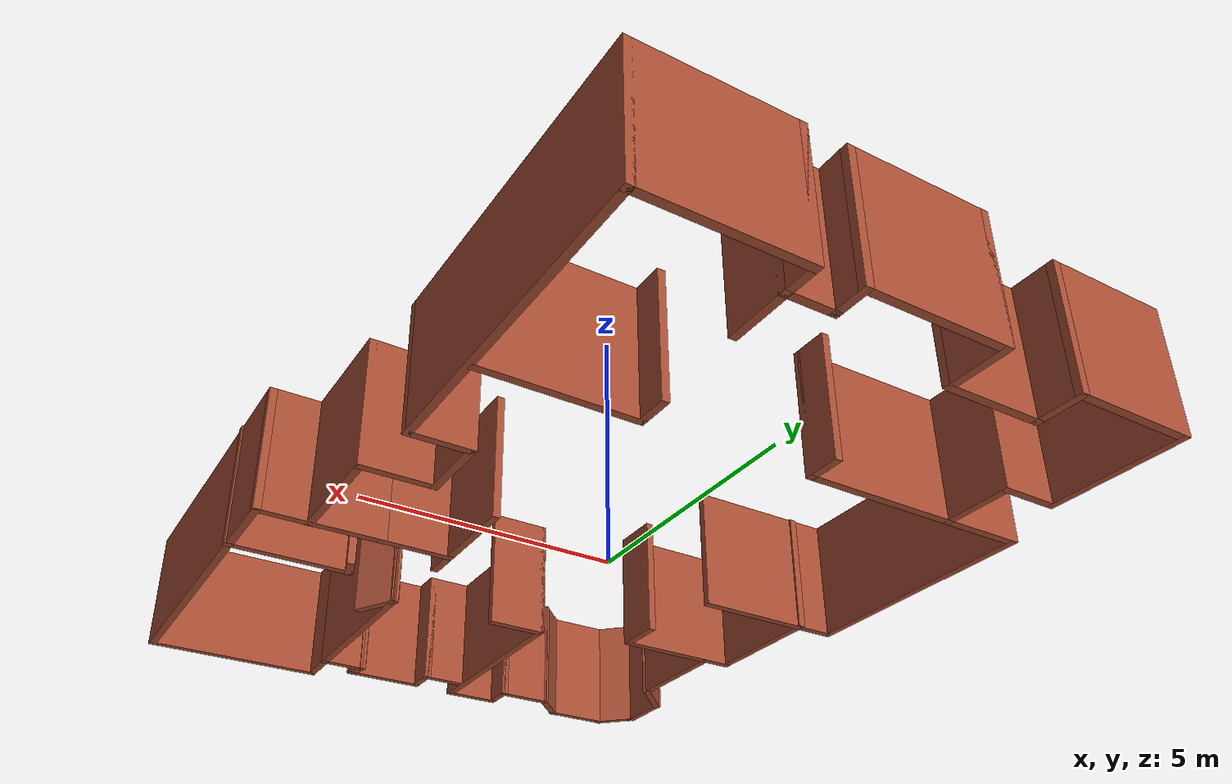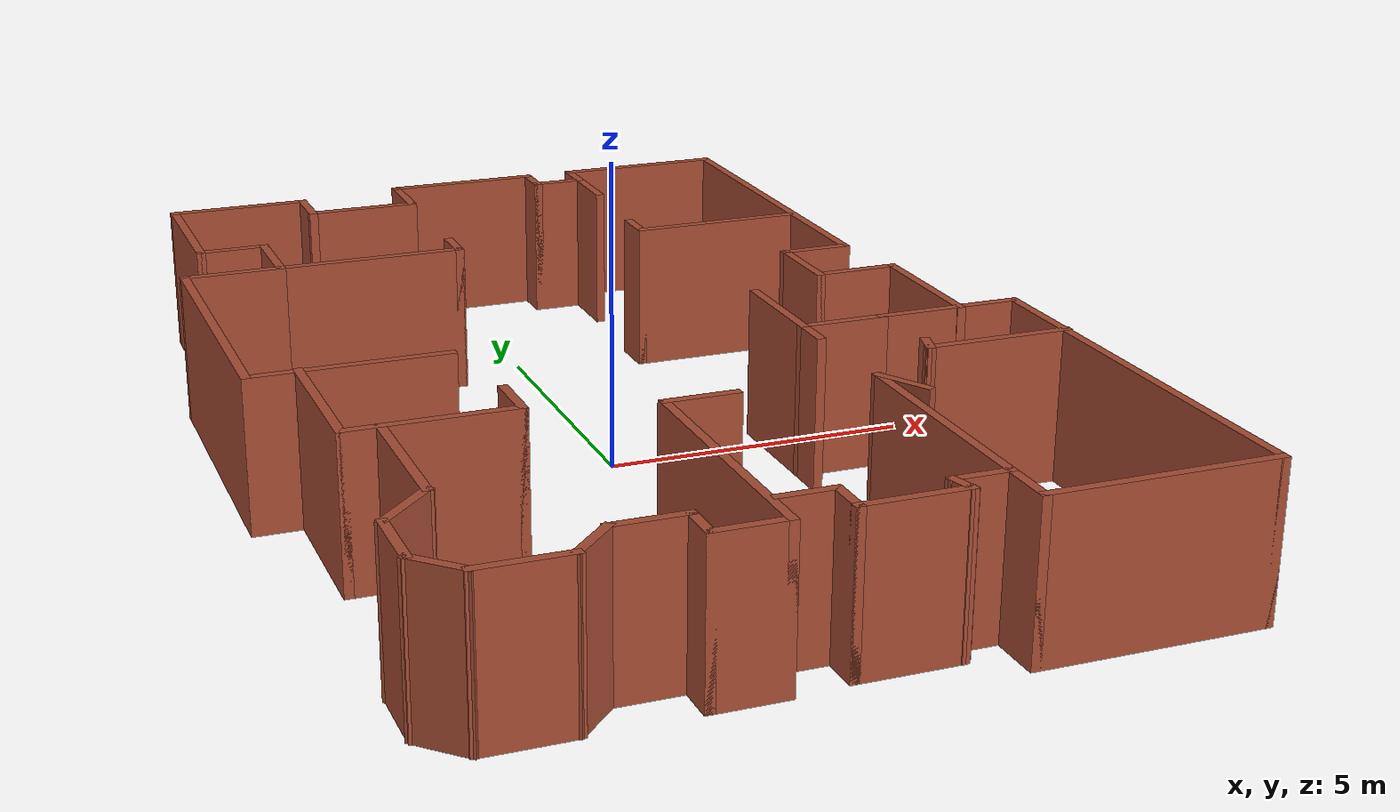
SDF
<?xml version='1.0'?>
<sdf version='1.6'>
  <model name='map_57'>
    <pose frame=''>0.255842 0.109727 0 0 -0 0</pose>
    <link name='Wall_0'>
      <collision name='Wall_0_Collision'>
        <geometry>
          <box>
            <size>1.25 0.15 2.5</size>
          </box>
        </geometry>
        <pose frame=''>0 0 1.25 0 -0 0</pose>
      </collision>
      <visual name='Wall_0_Visual'>
        <pose frame=''>0 0 1.25 0 -0 0</pose>
        <geometry>
          <box>
            <size>1.25 0.15 2.5</size>
          </box>
        </geometry>
        <material>
          <script>
            <uri>file://media/materials/scripts/gazebo.material</uri>
            <name>Gazebo/Bricks</name>
          </script>
          <ambient>1 1 1 1</ambient>
        </material>
        <meta>
          <layer>0</layer>
        </meta>
      </visual>
      <pose frame=''>-1.43298 8.01831 0 0 -0 -1.5708</pose>
    </link>
    <link name='Wall_1'>
      <collision name='Wall_1_Collision'>
        <geometry>
          <box>
            <size>2 0.15 2.5</size>
          </box>
        </geometry>
        <pose frame=''>0 0 1.25 0 -0 0</pose>
      </collision>
      <visual name='Wall_1_Visual'>
        <pose frame=''>0 0 1.25 0 -0 0</pose>
        <geometry>
          <box>
            <size>2 0.15 2.5</size>
          </box>
        </geometry>
        <material>
          <script>
            <uri>file://media/materials/scripts/gazebo.material</uri>
            <name>Gazebo/Bricks</name>
          </script>
          <ambient>1 1 1 1</ambient>
        </material>
        <meta>
          <layer>0</layer>
        </meta>
      </visual>
      <pose frame=''>-2.35798 7.46831 0 0 -0 3.14159</pose>
    </link>
    <link name='Wall_11'>
      <collision name='Wall_11_Collision'>
        <geometry>
          <box>
            <size>2.75 0.15 2.5</size>
          </box>
        </geometry>
        <pose frame=''>0 0 1.25 0 -0 0</pose>
      </collision>
      <visual name='Wall_11_Visual'>
        <pose frame=''>0 0 1.25 0 -0 0</pose>
        <geometry>
          <box>
            <size>2.75 0.15 2.5</size>
          </box>
        </geometry>
        <material>
          <script>
            <uri>file://media/materials/scripts/gazebo.material</uri>
            <name>Gazebo/Bricks</name>
          </script>
          <ambient>1 1 1 1</ambient>
        </material>
        <meta>
          <layer>0</layer>
        </meta>
      </visual>
      <pose frame=''>-5.34398 -1.99292 0 0 -0 -1.5708</pose>
    </link>
    <link name='Wall_12'>
      <collision name='Wall_12_Collision'>
        <geometry>
          <box>
            <size>2.75 0.15 2.5</size>
          </box>
        </geometry>
        <pose frame=''>0 0 1.25 0 -0 0</pose>
      </collision>
      <visual name='Wall_12_Visual'>
        <pose frame=''>0 0 1.25 0 -0 0</pose>
        <geometry>
          <box>
            <size>2.75 0.15 2.5</size>
          </box>
        </geometry>
        <material>
          <script>
            <uri>file://media/materials/scripts/gazebo.material</uri>
            <name>Gazebo/Bricks</name>
          </script>
          <ambient>1 1 1 1</ambient>
        </material>
        <meta>
          <layer>0</layer>
        </meta>
      </visual>
      <pose frame=''>-4.04397 -3.29292 0 0 -0 0</pose>
    </link>
    <link name='Wall_13'>
      <collision name='Wall_13_Collision'>
        <geometry>
          <box>
            <size>1 0.15 2.5</size>
          </box>
        </geometry>
        <pose frame=''>0 0 1.25 0 -0 0</pose>
      </collision>
      <visual name='Wall_13_Visual'>
        <pose frame=''>0 0 1.25 0 -0 0</pose>
        <geometry>
          <box>
            <size>1 0.15 2.5</size>
          </box>
        </geometry>
        <material>
          <script>
            <uri>file://media/materials/scripts/gazebo.material</uri>
            <name>Gazebo/Bricks</name>
          </script>
          <ambient>1 1 1 1</ambient>
        </material>
        <meta>
          <layer>0</layer>
        </meta>
      </visual>
      <pose frame=''>-2.74397 -2.86792 0 0 -0 1.5708</pose>
    </link>
    <link name='Wall_15'>
      <collision name='Wall_15_Collision'>
        <geometry>
          <box>
            <size>2.5 0.15 2.5</size>
          </box>
        </geometry>
        <pose frame=''>0 0 1.25 0 -0 0</pose>
      </collision>
      <visual name='Wall_15_Visual'>
        <pose frame=''>0 0 1.25 0 -0 0</pose>
        <geometry>
          <box>
            <size>2.5 0.15 2.5</size>
          </box>
        </geometry>
        <material>
          <script>
            <uri>file://media/materials/scripts/gazebo.material</uri>
            <name>Gazebo/Bricks</name>
          </script>
          <ambient>1 1 1 1</ambient>
        </material>
        <meta>
          <layer>0</layer>
        </meta>
      </visual>
      <pose frame=''>-4.77792 -4.48593 0 0 -0 -1.5708</pose>
    </link>
    <link name='Wall_16'>
      <collision name='Wall_16_Collision'>
        <geometry>
          <box>
            <size>1.25 0.15 2.5</size>
          </box>
        </geometry>
        <pose frame=''>0 0 1.25 0 -0 0</pose>
      </collision>
      <visual name='Wall_16_Visual'>
        <pose frame=''>0 0 1.25 0 -0 0</pose>
        <geometry>
          <box>
            <size>1.25 0.15 2.5</size>
          </box>
        </geometry>
        <material>
          <script>
            <uri>file://media/materials/scripts/gazebo.material</uri>
            <name>Gazebo/Bricks</name>
          </script>
          <ambient>1 1 1 1</ambient>
        </material>
        <meta>
          <layer>0</layer>
        </meta>
      </visual>
      <pose frame=''>-5.16683 -6.04984 0 0 -0 -2.35619</pose>
    </link>
    <link name='Wall_17'>
      <collision name='Wall_17_Collision'>
        <geometry>
          <box>
            <size>1.25 0.15 2.5</size>
          </box>
        </geometry>
        <pose frame=''>0 0 1.25 0 -0 0</pose>
      </collision>
      <visual name='Wall_17_Visual'>
        <pose frame=''>0 0 1.25 0 -0 0</pose>
        <geometry>
          <box>
            <size>1.25 0.15 2.5</size>
          </box>
        </geometry>
        <material>
          <script>
            <uri>file://media/materials/scripts/gazebo.material</uri>
            <name>Gazebo/Bricks</name>
          </script>
          <ambient>1 1 1 1</ambient>
        </material>
        <meta>
          <layer>0</layer>
        </meta>
      </visual>
      <pose frame=''>-5.55574 -6.98875 0 0 -0 -1.5708</pose>
    </link>
    <link name='Wall_18'>
      <collision name='Wall_18_Collision'>
        <geometry>
          <box>
            <size>1 0.15 2.5</size>
          </box>
        </geometry>
        <pose frame=''>0 0 1.25 0 -0 0</pose>
      </collision>
      <visual name='Wall_18_Visual'>
        <pose frame=''>0 0 1.25 0 -0 0</pose>
        <geometry>
          <box>
            <size>1 0.15 2.5</size>
          </box>
        </geometry>
        <material>
          <script>
            <uri>file://media/materials/scripts/gazebo.material</uri>
            <name>Gazebo/Bricks</name>
          </script>
          <ambient>1 1 1 1</ambient>
        </material>
        <meta>
          <layer>0</layer>
        </meta>
      </visual>
      <pose frame=''>-5.25522 -7.83927 0 0 -0 -0.785398</pose>
    </link>
    <link name='Wall_19'>
      <collision name='Wall_19_Collision'>
        <geometry>
          <box>
            <size>1.5 0.15 2.5</size>
          </box>
        </geometry>
        <pose frame=''>0 0 1.25 0 -0 0</pose>
      </collision>
      <visual name='Wall_19_Visual'>
        <pose frame=''>0 0 1.25 0 -0 0</pose>
        <geometry>
          <box>
            <size>1.5 0.15 2.5</size>
          </box>
        </geometry>
        <material>
          <script>
            <uri>file://media/materials/scripts/gazebo.material</uri>
            <name>Gazebo/Bricks</name>
          </script>
          <ambient>1 1 1 1</ambient>
        </material>
        <meta>
          <layer>0</layer>
        </meta>
      </visual>
      <pose frame=''>-4.2797 -8.13979 0 0 -0 0</pose>
    </link>
    <link name='Wall_2'>
      <collision name='Wall_2_Collision'>
        <geometry>
          <box>
            <size>1 0.15 2.5</size>
          </box>
        </geometry>
        <pose frame=''>0 0 1.25 0 -0 0</pose>
      </collision>
      <visual name='Wall_2_Visual'>
        <pose frame=''>0 0 1.25 0 -0 0</pose>
        <geometry>
          <box>
            <size>1 0.15 2.5</size>
          </box>
        </geometry>
        <material>
          <script>
            <uri>file://media/materials/scripts/gazebo.material</uri>
            <name>Gazebo/Bricks</name>
          </script>
          <ambient>1 1 1 1</ambient>
        </material>
        <meta>
          <layer>0</layer>
        </meta>
      </visual>
      <pose frame=''>-3.28298 7.89331 0 0 -0 1.5708</pose>
    </link>
    <link name='Wall_20'>
      <collision name='Wall_20_Collision'>
        <geometry>
          <box>
            <size>1 0.15 2.5</size>
          </box>
        </geometry>
        <pose frame=''>0 0 1.25 0 -0 0</pose>
      </collision>
      <visual name='Wall_20_Visual'>
        <pose frame=''>0 0 1.25 0 -0 0</pose>
        <geometry>
          <box>
            <size>1 0.15 2.5</size>
          </box>
        </geometry>
        <material>
          <script>
            <uri>file://media/materials/scripts/gazebo.material</uri>
            <name>Gazebo/Bricks</name>
          </script>
          <ambient>1 1 1 1</ambient>
        </material>
        <meta>
          <layer>0</layer>
        </meta>
      </visual>
      <pose frame=''>-3.30417 -7.83927 0 0 -0 0.785398</pose>
    </link>
    <link name='Wall_21'>
      <collision name='Wall_21_Collision'>
        <geometry>
          <box>
            <size>1.25 0.15 2.5</size>
          </box>
        </geometry>
        <pose frame=''>0 0 1.25 0 -0 0</pose>
      </collision>
      <visual name='Wall_21_Visual'>
        <pose frame=''>0 0 1.25 0 -0 0</pose>
        <geometry>
          <box>
            <size>1.25 0.15 2.5</size>
          </box>
        </geometry>
        <material>
          <script>
            <uri>file://media/materials/scripts/gazebo.material</uri>
            <name>Gazebo/Bricks</name>
          </script>
          <ambient>1 1 1 1</ambient>
        </material>
        <meta>
          <layer>0</layer>
        </meta>
      </visual>
      <pose frame=''>-2.45365 -7.53875 0 0 -0 0</pose>
    </link>
    <link name='Wall_22'>
      <collision name='Wall_22_Collision'>
        <geometry>
          <box>
            <size>0.75 0.15 2.5</size>
          </box>
        </geometry>
        <pose frame=''>0 0 1.25 0 -0 0</pose>
      </collision>
      <visual name='Wall_22_Visual'>
        <pose frame=''>0 0 1.25 0 -0 0</pose>
        <geometry>
          <box>
            <size>0.75 0.15 2.5</size>
          </box>
        </geometry>
        <material>
          <script>
            <uri>file://media/materials/scripts/gazebo.material</uri>
            <name>Gazebo/Bricks</name>
          </script>
          <ambient>1 1 1 1</ambient>
        </material>
        <meta>
          <layer>0</layer>
        </meta>
      </visual>
      <pose frame=''>-1.90365 -7.83875 0 0 -0 -1.5708</pose>
    </link>
    <link name='Wall_23'>
      <collision name='Wall_23_Collision'>
        <geometry>
          <box>
            <size>1.25 0.15 2.5</size>
          </box>
        </geometry>
        <pose frame=''>0 0 1.25 0 -0 0</pose>
      </collision>
      <visual name='Wall_23_Visual'>
        <pose frame=''>0 0 1.25 0 -0 0</pose>
        <geometry>
          <box>
            <size>1.25 0.15 2.5</size>
          </box>
        </geometry>
        <material>
          <script>
            <uri>file://media/materials/scripts/gazebo.material</uri>
            <name>Gazebo/Bricks</name>
          </script>
          <ambient>1 1 1 1</ambient>
        </material>
        <meta>
          <layer>0</layer>
        </meta>
      </visual>
      <pose frame=''>-1.35365 -8.13875 0 0 -0 0</pose>
    </link>
    <link name='Wall_24'>
      <collision name='Wall_24_Collision'>
        <geometry>
          <box>
            <size>4.5 0.15 2.5</size>
          </box>
        </geometry>
        <pose frame=''>0 0 1.25 0 -0 0</pose>
      </collision>
      <visual name='Wall_24_Visual'>
        <pose frame=''>0 0 1.25 0 -0 0</pose>
        <geometry>
          <box>
            <size>4.5 0.15 2.5</size>
          </box>
        </geometry>
        <material>
          <script>
            <uri>file://media/materials/scripts/gazebo.material</uri>
            <name>Gazebo/Bricks</name>
          </script>
          <ambient>1 1 1 1</ambient>
        </material>
        <meta>
          <layer>0</layer>
        </meta>
      </visual>
      <pose frame=''>-0.803654 -5.96375 0 0 -0 1.5708</pose>
    </link>
    <link name='Wall_26'>
      <collision name='Wall_26_Collision'>
        <geometry>
          <box>
            <size>1 0.15 2.5</size>
          </box>
        </geometry>
        <pose frame=''>0 0 1.25 0 -0 0</pose>
      </collision>
      <visual name='Wall_26_Visual'>
        <pose frame=''>0 0 1.25 0 -0 0</pose>
        <geometry>
          <box>
            <size>1 0.15 2.5</size>
          </box>
        </geometry>
        <material>
          <script>
            <uri>file://media/materials/scripts/gazebo.material</uri>
            <name>Gazebo/Bricks</name>
          </script>
          <ambient>1 1 1 1</ambient>
        </material>
        <meta>
          <layer>0</layer>
        </meta>
      </visual>
      <pose frame=''>-0.281037 -7.45638 0 0 -0 0</pose>
    </link>
    <link name='Wall_27'>
      <collision name='Wall_27_Collision'>
        <geometry>
          <box>
            <size>0.75 0.15 2.5</size>
          </box>
        </geometry>
        <pose frame=''>0 0 1.25 0 -0 0</pose>
      </collision>
      <visual name='Wall_27_Visual'>
        <pose frame=''>0 0 1.25 0 -0 0</pose>
        <geometry>
          <box>
            <size>0.75 0.15 2.5</size>
          </box>
        </geometry>
        <material>
          <script>
            <uri>file://media/materials/scripts/gazebo.material</uri>
            <name>Gazebo/Bricks</name>
          </script>
          <ambient>1 1 1 1</ambient>
        </material>
        <meta>
          <layer>0</layer>
        </meta>
      </visual>
      <pose frame=''>0.143963 -7.75638 0 0 -0 -1.5708</pose>
    </link>
    <link name='Wall_28'>
      <collision name='Wall_28_Collision'>
        <geometry>
          <box>
            <size>1.75 0.15 2.5</size>
          </box>
        </geometry>
        <pose frame=''>0 0 1.25 0 -0 0</pose>
      </collision>
      <visual name='Wall_28_Visual'>
        <pose frame=''>0 0 1.25 0 -0 0</pose>
        <geometry>
          <box>
            <size>1.75 0.15 2.5</size>
          </box>
        </geometry>
        <material>
          <script>
            <uri>file://media/materials/scripts/gazebo.material</uri>
            <name>Gazebo/Bricks</name>
          </script>
          <ambient>1 1 1 1</ambient>
        </material>
        <meta>
          <layer>0</layer>
        </meta>
      </visual>
      <pose frame=''>0.943963 -8.05638 0 0 -0 0</pose>
    </link>
    <link name='Wall_29'>
      <collision name='Wall_29_Collision'>
        <geometry>
          <box>
            <size>0.5 0.15 2.5</size>
          </box>
        </geometry>
        <pose frame=''>0 0 1.25 0 -0 0</pose>
      </collision>
      <visual name='Wall_29_Visual'>
        <pose frame=''>0 0 1.25 0 -0 0</pose>
        <geometry>
          <box>
            <size>0.5 0.15 2.5</size>
          </box>
        </geometry>
        <material>
          <script>
            <uri>file://media/materials/scripts/gazebo.material</uri>
            <name>Gazebo/Bricks</name>
          </script>
          <ambient>1 1 1 1</ambient>
        </material>
        <meta>
          <layer>0</layer>
        </meta>
      </visual>
      <pose frame=''>1.69867 -7.88735 0 0 -0 1.8326</pose>
    </link>
    <link name='Wall_3'>
      <collision name='Wall_3_Collision'>
        <geometry>
          <box>
            <size>2.5 0.15 2.5</size>
          </box>
        </geometry>
        <pose frame=''>0 0 1.25 0 -0 0</pose>
      </collision>
      <visual name='Wall_3_Visual'>
        <pose frame=''>0 0 1.25 0 -0 0</pose>
        <geometry>
          <box>
            <size>2.5 0.15 2.5</size>
          </box>
        </geometry>
        <material>
          <script>
            <uri>file://media/materials/scripts/gazebo.material</uri>
            <name>Gazebo/Bricks</name>
          </script>
          <ambient>1 1 1 1</ambient>
        </material>
        <meta>
          <layer>0</layer>
        </meta>
      </visual>
      <pose frame=''>-4.45798 8.31831 0 0 -0 3.14159</pose>
    </link>
    <link name='Wall_30'>
      <collision name='Wall_30_Collision'>
        <geometry>
          <box>
            <size>1 0.15 2.5</size>
          </box>
        </geometry>
        <pose frame=''>0 0 1.25 0 -0 0</pose>
      </collision>
      <visual name='Wall_30_Visual'>
        <pose frame=''>0 0 1.25 0 -0 0</pose>
        <geometry>
          <box>
            <size>1 0.15 2.5</size>
          </box>
        </geometry>
        <material>
          <script>
            <uri>file://media/materials/scripts/gazebo.material</uri>
            <name>Gazebo/Bricks</name>
          </script>
          <ambient>1 1 1 1</ambient>
        </material>
        <meta>
          <layer>0</layer>
        </meta>
      </visual>
      <pose frame=''>2.07838 -7.71831 0 0 -0 0</pose>
    </link>
    <link name='Wall_31'>
      <collision name='Wall_31_Collision'>
        <geometry>
          <box>
            <size>4 0.15 2.5</size>
          </box>
        </geometry>
        <pose frame=''>0 0 1.25 0 -0 0</pose>
      </collision>
      <visual name='Wall_31_Visual'>
        <pose frame=''>0 0 1.25 0 -0 0</pose>
        <geometry>
          <box>
            <size>4 0.15 2.5</size>
          </box>
        </geometry>
        <material>
          <script>
            <uri>file://media/materials/scripts/gazebo.material</uri>
            <name>Gazebo/Bricks</name>
          </script>
          <ambient>1 1 1 1</ambient>
        </material>
        <meta>
          <layer>0</layer>
        </meta>
      </visual>
      <pose frame=''>2.50338 -5.79331 0 0 -0 1.5708</pose>
    </link>
    <link name='Wall_33'>
      <collision name='Wall_33_Collision'>
        <geometry>
          <box>
            <size>1.25 0.15 2.5</size>
          </box>
        </geometry>
        <pose frame=''>0 0 1.25 0 -0 0</pose>
      </collision>
      <visual name='Wall_33_Visual'>
        <pose frame=''>0 0 1.25 0 -0 0</pose>
        <geometry>
          <box>
            <size>1.25 0.15 2.5</size>
          </box>
        </geometry>
        <material>
          <script>
            <uri>file://media/materials/scripts/gazebo.material</uri>
            <name>Gazebo/Bricks</name>
          </script>
          <ambient>1 1 1 1</ambient>
        </material>
        <meta>
          <layer>0</layer>
        </meta>
      </visual>
      <pose frame=''>-0.253654 -3.78875 0 0 -0 0</pose>
    </link>
    <link name='Wall_35'>
      <collision name='Wall_35_Collision'>
        <geometry>
          <box>
            <size>1 0.15 2.5</size>
          </box>
        </geometry>
        <pose frame=''>0 0 1.25 0 -0 0</pose>
      </collision>
      <visual name='Wall_35_Visual'>
        <pose frame=''>0 0 1.25 0 -0 0</pose>
        <geometry>
          <box>
            <size>1 0.15 2.5</size>
          </box>
        </geometry>
        <material>
          <script>
            <uri>file://media/materials/scripts/gazebo.material</uri>
            <name>Gazebo/Bricks</name>
          </script>
          <ambient>1 1 1 1</ambient>
        </material>
        <meta>
          <layer>0</layer>
        </meta>
      </visual>
      <pose frame=''>2.50338 -8.14331 0 0 -0 -1.5708</pose>
    </link>
    <link name='Wall_36'>
      <collision name='Wall_36_Collision'>
        <geometry>
          <box>
            <size>3.75 0.15 2.5</size>
          </box>
        </geometry>
        <pose frame=''>0 0 1.25 0 -0 0</pose>
      </collision>
      <visual name='Wall_36_Visual'>
        <pose frame=''>0 0 1.25 0 -0 0</pose>
        <geometry>
          <box>
            <size>3.75 0.15 2.5</size>
          </box>
        </geometry>
        <material>
          <script>
            <uri>file://media/materials/scripts/gazebo.material</uri>
            <name>Gazebo/Bricks</name>
          </script>
          <ambient>1 1 1 1</ambient>
        </material>
        <meta>
          <layer>0</layer>
        </meta>
      </visual>
      <pose frame=''>4.30338 -8.56831 0 0 -0 0</pose>
    </link>
    <link name='Wall_37'>
      <collision name='Wall_37_Collision'>
        <geometry>
          <box>
            <size>7.25 0.15 2.5</size>
          </box>
        </geometry>
        <pose frame=''>0 0 1.25 0 -0 0</pose>
      </collision>
      <visual name='Wall_37_Visual'>
        <pose frame=''>0 0 1.25 0 -0 0</pose>
        <geometry>
          <box>
            <size>7.25 0.15 2.5</size>
          </box>
        </geometry>
        <material>
          <script>
            <uri>file://media/materials/scripts/gazebo.material</uri>
            <name>Gazebo/Bricks</name>
          </script>
          <ambient>1 1 1 1</ambient>
        </material>
        <meta>
          <layer>0</layer>
        </meta>
      </visual>
      <pose frame=''>6.10338 -5.01831 0 0 -0 1.5708</pose>
    </link>
    <link name='Wall_38'>
      <collision name='Wall_38_Collision'>
        <geometry>
          <box>
            <size>2.5 0.15 2.5</size>
          </box>
        </geometry>
        <pose frame=''>0 0 1.25 0 -0 0</pose>
      </collision>
      <visual name='Wall_38_Visual'>
        <pose frame=''>0 0 1.25 0 -0 0</pose>
        <geometry>
          <box>
            <size>2.5 0.15 2.5</size>
          </box>
        </geometry>
        <material>
          <script>
            <uri>file://media/materials/scripts/gazebo.material</uri>
            <name>Gazebo/Bricks</name>
          </script>
          <ambient>1 1 1 1</ambient>
        </material>
        <meta>
          <layer>0</layer>
        </meta>
      </visual>
      <pose frame=''>4.92838 -1.46831 0 0 -0 3.14159</pose>
    </link>
    <link name='Wall_4'>
      <collision name='Wall_4_Collision'>
        <geometry>
          <box>
            <size>2.75 0.15 2.5</size>
          </box>
        </geometry>
        <pose frame=''>0 0 1.25 0 -0 0</pose>
      </collision>
      <visual name='Wall_4_Visual'>
        <pose frame=''>0 0 1.25 0 -0 0</pose>
        <geometry>
          <box>
            <size>2.75 0.15 2.5</size>
          </box>
        </geometry>
        <material>
          <script>
            <uri>file://media/materials/scripts/gazebo.material</uri>
            <name>Gazebo/Bricks</name>
          </script>
          <ambient>1 1 1 1</ambient>
        </material>
        <meta>
          <layer>0</layer>
        </meta>
      </visual>
      <pose frame=''>-5.63298 7.01831 0 0 -0 -1.5708</pose>
    </link>
    <link name='Wall_40'>
      <collision name='Wall_40_Collision'>
        <geometry>
          <box>
            <size>2.5 0.15 2.5</size>
          </box>
        </geometry>
        <pose frame=''>0 0 1.25 0 -0 0</pose>
      </collision>
      <visual name='Wall_40_Visual'>
        <pose frame=''>0 0 1.25 0 -0 0</pose>
        <geometry>
          <box>
            <size>2.5 0.15 2.5</size>
          </box>
        </geometry>
        <material>
          <script>
            <uri>file://media/materials/scripts/gazebo.material</uri>
            <name>Gazebo/Bricks</name>
          </script>
          <ambient>1 1 1 1</ambient>
        </material>
        <meta>
          <layer>0</layer>
        </meta>
      </visual>
      <pose frame=''>4.95798 -3.03661 0 0 -0 3.14159</pose>
    </link>
    <link name='Wall_41'>
      <collision name='Wall_41_Collision'>
        <geometry>
          <box>
            <size>0.5 0.15 2.5</size>
          </box>
        </geometry>
        <pose frame=''>0 0 1.25 0 -0 0</pose>
      </collision>
      <visual name='Wall_41_Visual'>
        <pose frame=''>0 0 1.25 0 -0 0</pose>
        <geometry>
          <box>
            <size>0.5 0.15 2.5</size>
          </box>
        </geometry>
        <material>
          <script>
            <uri>file://media/materials/scripts/gazebo.material</uri>
            <name>Gazebo/Bricks</name>
          </script>
          <ambient>1 1 1 1</ambient>
        </material>
        <meta>
          <layer>0</layer>
        </meta>
      </visual>
      <pose frame=''>3.82827 -2.86757 0 0 -0 1.309</pose>
    </link>
    <link name='Wall_43'>
      <collision name='Wall_43_Collision'>
        <geometry>
          <box>
            <size>1.5 0.15 2.5</size>
          </box>
        </geometry>
        <pose frame=''>0 0 1.25 0 -0 0</pose>
      </collision>
      <visual name='Wall_43_Visual'>
        <pose frame=''>0 0 1.25 0 -0 0</pose>
        <geometry>
          <box>
            <size>1.5 0.15 2.5</size>
          </box>
        </geometry>
        <material>
          <script>
            <uri>file://media/materials/scripts/gazebo.material</uri>
            <name>Gazebo/Bricks</name>
          </script>
          <ambient>1 1 1 1</ambient>
        </material>
        <meta>
          <layer>0</layer>
        </meta>
      </visual>
      <pose frame=''>3.07838 -1.46831 0 0 -0 3.14159</pose>
    </link>
    <link name='Wall_44'>
      <collision name='Wall_44_Collision'>
        <geometry>
          <box>
            <size>0.75 0.15 2.5</size>
          </box>
        </geometry>
        <pose frame=''>0 0 1.25 0 -0 0</pose>
      </collision>
      <visual name='Wall_44_Visual'>
        <pose frame=''>0 0 1.25 0 -0 0</pose>
        <geometry>
          <box>
            <size>0.75 0.15 2.5</size>
          </box>
        </geometry>
        <material>
          <script>
            <uri>file://media/materials/scripts/gazebo.material</uri>
            <name>Gazebo/Bricks</name>
          </script>
          <ambient>1 1 1 1</ambient>
        </material>
        <meta>
          <layer>0</layer>
        </meta>
      </visual>
      <pose frame=''>2.40338 -1.76831 0 0 -0 -1.5708</pose>
    </link>
    <link name='Wall_46'>
      <collision name='Wall_46_Collision'>
        <geometry>
          <box>
            <size>1 0.15 2.5</size>
          </box>
        </geometry>
        <pose frame=''>0 0 1.25 0 -0 0</pose>
      </collision>
      <visual name='Wall_46_Visual'>
        <pose frame=''>0 0 1.25 0 -0 0</pose>
        <geometry>
          <box>
            <size>1 0.15 2.5</size>
          </box>
        </geometry>
        <material>
          <script>
            <uri>file://media/materials/scripts/gazebo.material</uri>
            <name>Gazebo/Bricks</name>
          </script>
          <ambient>1 1 1 1</ambient>
        </material>
        <meta>
          <layer>0</layer>
        </meta>
      </visual>
      <pose frame=''>2.71588 -4.23637 0 0 -0 -1.0472</pose>
    </link>
    <link name='Wall_48'>
      <collision name='Wall_48_Collision'>
        <geometry>
          <box>
            <size>2.75 0.15 2.5</size>
          </box>
        </geometry>
        <pose frame=''>0 0 1.25 0 -0 0</pose>
      </collision>
      <visual name='Wall_48_Visual'>
        <pose frame=''>0 0 1.25 0 -0 0</pose>
        <geometry>
          <box>
            <size>2.75 0.15 2.5</size>
          </box>
        </geometry>
        <material>
          <script>
            <uri>file://media/materials/scripts/gazebo.material</uri>
            <name>Gazebo/Bricks</name>
          </script>
          <ambient>1 1 1 1</ambient>
        </material>
        <meta>
          <layer>0</layer>
        </meta>
      </visual>
      <pose frame=''>-0.132977 8.56831 0 0 -0 0</pose>
    </link>
    <link name='Wall_49'>
      <collision name='Wall_49_Collision'>
        <geometry>
          <box>
            <size>0.75 0.15 2.5</size>
          </box>
        </geometry>
        <pose frame=''>0 0 1.25 0 -0 0</pose>
      </collision>
      <visual name='Wall_49_Visual'>
        <pose frame=''>0 0 1.25 0 -0 0</pose>
        <geometry>
          <box>
            <size>0.75 0.15 2.5</size>
          </box>
        </geometry>
        <material>
          <script>
            <uri>file://media/materials/scripts/gazebo.material</uri>
            <name>Gazebo/Bricks</name>
          </script>
          <ambient>1 1 1 1</ambient>
        </material>
        <meta>
          <layer>0</layer>
        </meta>
      </visual>
      <pose frame=''>1.16702 8.26831 0 0 -0 -1.5708</pose>
    </link>
    <link name='Wall_5'>
      <collision name='Wall_5_Collision'>
        <geometry>
          <box>
            <size>1.25 0.15 2.5</size>
          </box>
        </geometry>
        <pose frame=''>0 0 1.25 0 -0 0</pose>
      </collision>
      <visual name='Wall_5_Visual'>
        <pose frame=''>0 0 1.25 0 -0 0</pose>
        <geometry>
          <box>
            <size>1.25 0.15 2.5</size>
          </box>
        </geometry>
        <material>
          <script>
            <uri>file://media/materials/scripts/gazebo.material</uri>
            <name>Gazebo/Bricks</name>
          </script>
          <ambient>1 1 1 1</ambient>
        </material>
        <meta>
          <layer>0</layer>
        </meta>
      </visual>
      <pose frame=''>-5.08298 5.71831 0 0 -0 0</pose>
    </link>
    <link name='Wall_50'>
      <collision name='Wall_50_Collision'>
        <geometry>
          <box>
            <size>1 0.15 2.5</size>
          </box>
        </geometry>
        <pose frame=''>0 0 1.25 0 -0 0</pose>
      </collision>
      <visual name='Wall_50_Visual'>
        <pose frame=''>0 0 1.25 0 -0 0</pose>
        <geometry>
          <box>
            <size>1 0.15 2.5</size>
          </box>
        </geometry>
        <material>
          <script>
            <uri>file://media/materials/scripts/gazebo.material</uri>
            <name>Gazebo/Bricks</name>
          </script>
          <ambient>1 1 1 1</ambient>
        </material>
        <meta>
          <layer>0</layer>
        </meta>
      </visual>
      <pose frame=''>1.59202 7.96831 0 0 -0 0</pose>
    </link>
    <link name='Wall_51'>
      <collision name='Wall_51_Collision'>
        <geometry>
          <box>
            <size>0.75 0.15 2.5</size>
          </box>
        </geometry>
        <pose frame=''>0 0 1.25 0 -0 0</pose>
      </collision>
      <visual name='Wall_51_Visual'>
        <pose frame=''>0 0 1.25 0 -0 0</pose>
        <geometry>
          <box>
            <size>0.75 0.15 2.5</size>
          </box>
        </geometry>
        <material>
          <script>
            <uri>file://media/materials/scripts/gazebo.material</uri>
            <name>Gazebo/Bricks</name>
          </script>
          <ambient>1 1 1 1</ambient>
        </material>
        <meta>
          <layer>0</layer>
        </meta>
      </visual>
      <pose frame=''>2.01702 8.26831 0 0 -0 1.5708</pose>
    </link>
    <link name='Wall_52'>
      <collision name='Wall_52_Collision'>
        <geometry>
          <box>
            <size>3 0.15 2.5</size>
          </box>
        </geometry>
        <pose frame=''>0 0 1.25 0 -0 0</pose>
      </collision>
      <visual name='Wall_52_Visual'>
        <pose frame=''>0 0 1.25 0 -0 0</pose>
        <geometry>
          <box>
            <size>3 0.15 2.5</size>
          </box>
        </geometry>
        <material>
          <script>
            <uri>file://media/materials/scripts/gazebo.material</uri>
            <name>Gazebo/Bricks</name>
          </script>
          <ambient>1 1 1 1</ambient>
        </material>
        <meta>
          <layer>0</layer>
        </meta>
      </visual>
      <pose frame=''>3.44202 8.56831 0 0 -0 0</pose>
    </link>
    <link name='Wall_53'>
      <collision name='Wall_53_Collision'>
        <geometry>
          <box>
            <size>6.5 0.15 2.5</size>
          </box>
        </geometry>
        <pose frame=''>0 0 1.25 0 -0 0</pose>
      </collision>
      <visual name='Wall_53_Visual'>
        <pose frame=''>0 0 1.25 0 -0 0</pose>
        <geometry>
          <box>
            <size>6.5 0.15 2.5</size>
          </box>
        </geometry>
        <material>
          <script>
            <uri>file://media/materials/scripts/gazebo.material</uri>
            <name>Gazebo/Bricks</name>
          </script>
          <ambient>1 1 1 1</ambient>
        </material>
        <meta>
          <layer>0</layer>
        </meta>
      </visual>
      <pose frame=''>4.86702 5.39331 0 0 -0 -1.5708</pose>
    </link>
    <link name='Wall_54'>
      <collision name='Wall_54_Collision'>
        <geometry>
          <box>
            <size>1.25 0.15 2.5</size>
          </box>
        </geometry>
        <pose frame=''>0 0 1.25 0 -0 0</pose>
      </collision>
      <visual name='Wall_54_Visual'>
        <pose frame=''>0 0 1.25 0 -0 0</pose>
        <geometry>
          <box>
            <size>1.25 0.15 2.5</size>
          </box>
        </geometry>
        <material>
          <script>
            <uri>file://media/materials/scripts/gazebo.material</uri>
            <name>Gazebo/Bricks</name>
          </script>
          <ambient>1 1 1 1</ambient>
        </material>
        <meta>
          <layer>0</layer>
        </meta>
      </visual>
      <pose frame=''>4.31702 2.21831 0 0 -0 3.14159</pose>
    </link>
    <link name='Wall_55'>
      <collision name='Wall_55_Collision'>
        <geometry>
          <box>
            <size>1.5 0.15 2.5</size>
          </box>
        </geometry>
        <pose frame=''>0 0 1.25 0 -0 0</pose>
      </collision>
      <visual name='Wall_55_Visual'>
        <pose frame=''>0 0 1.25 0 -0 0</pose>
        <geometry>
          <box>
            <size>1.5 0.15 2.5</size>
          </box>
        </geometry>
        <material>
          <script>
            <uri>file://media/materials/scripts/gazebo.material</uri>
            <name>Gazebo/Bricks</name>
          </script>
          <ambient>1 1 1 1</ambient>
        </material>
        <meta>
          <layer>0</layer>
        </meta>
      </visual>
      <pose frame=''>3.76702 1.54331 0 0 -0 -1.5708</pose>
    </link>
    <link name='Wall_56'>
      <collision name='Wall_56_Collision'>
        <geometry>
          <box>
            <size>1.5 0.15 2.5</size>
          </box>
        </geometry>
        <pose frame=''>0 0 1.25 0 -0 0</pose>
      </collision>
      <visual name='Wall_56_Visual'>
        <pose frame=''>0 0 1.25 0 -0 0</pose>
        <geometry>
          <box>
            <size>1.5 0.15 2.5</size>
          </box>
        </geometry>
        <material>
          <script>
            <uri>file://media/materials/scripts/gazebo.material</uri>
            <name>Gazebo/Bricks</name>
          </script>
          <ambient>1 1 1 1</ambient>
        </material>
        <meta>
          <layer>0</layer>
        </meta>
      </visual>
      <pose frame=''>4.44202 0.868308 0 0 -0 0</pose>
    </link>
    <link name='Wall_57'>
      <collision name='Wall_57_Collision'>
        <geometry>
          <box>
            <size>2.5 0.15 2.5</size>
          </box>
        </geometry>
        <pose frame=''>0 0 1.25 0 -0 0</pose>
      </collision>
      <visual name='Wall_57_Visual'>
        <pose frame=''>0 0 1.25 0 -0 0</pose>
        <geometry>
          <box>
            <size>2.5 0.15 2.5</size>
          </box>
        </geometry>
        <material>
          <script>
            <uri>file://media/materials/scripts/gazebo.material</uri>
            <name>Gazebo/Bricks</name>
          </script>
          <ambient>1 1 1 1</ambient>
        </material>
        <meta>
          <layer>0</layer>
        </meta>
      </visual>
      <pose frame=''>5.11702 -0.306692 0 0 -0 -1.5708</pose>
    </link>
    <link name='Wall_59'>
      <collision name='Wall_59_Collision'>
        <geometry>
          <box>
            <size>2 0.15 2.5</size>
          </box>
        </geometry>
        <pose frame=''>0 0 1.25 0 -0 0</pose>
      </collision>
      <visual name='Wall_59_Visual'>
        <pose frame=''>0 0 1.25 0 -0 0</pose>
        <geometry>
          <box>
            <size>2 0.15 2.5</size>
          </box>
        </geometry>
        <material>
          <script>
            <uri>file://media/materials/scripts/gazebo.material</uri>
            <name>Gazebo/Bricks</name>
          </script>
          <ambient>1 1 1 1</ambient>
        </material>
        <meta>
          <layer>0</layer>
        </meta>
      </visual>
      <pose frame=''>2.40338 -0.543309 0 0 -0 1.5708</pose>
    </link>
    <link name='Wall_6'>
      <collision name='Wall_6_Collision'>
        <geometry>
          <box>
            <size>1.5 0.15 2.5</size>
          </box>
        </geometry>
        <pose frame=''>0 0 1.25 0 -0 0</pose>
      </collision>
      <visual name='Wall_6_Visual'>
        <pose frame=''>0 0 1.25 0 -0 0</pose>
        <geometry>
          <box>
            <size>1.5 0.15 2.5</size>
          </box>
        </geometry>
        <material>
          <script>
            <uri>file://media/materials/scripts/gazebo.material</uri>
            <name>Gazebo/Bricks</name>
          </script>
          <ambient>1 1 1 1</ambient>
        </material>
        <meta>
          <layer>0</layer>
        </meta>
      </visual>
      <pose frame=''>-4.53298 5.04331 0 0 -0 -1.5708</pose>
    </link>
    <link name='Wall_61'>
      <collision name='Wall_61_Collision'>
        <geometry>
          <box>
            <size>3.25 0.15 2.5</size>
          </box>
        </geometry>
        <pose frame=''>0 0 1.25 0 -0 0</pose>
      </collision>
      <visual name='Wall_61_Visual'>
        <pose frame=''>0 0 1.25 0 -0 0</pose>
        <geometry>
          <box>
            <size>3.25 0.15 2.5</size>
          </box>
        </geometry>
        <material>
          <script>
            <uri>file://media/materials/scripts/gazebo.material</uri>
            <name>Gazebo/Bricks</name>
          </script>
          <ambient>1 1 1 1</ambient>
        </material>
        <meta>
          <layer>0</layer>
        </meta>
      </visual>
      <pose frame=''>-2.98298 4.36831 0 0 -0 0</pose>
    </link>
    <link name='Wall_62'>
      <collision name='Wall_62_Collision'>
        <geometry>
          <box>
            <size>0.75 0.15 2.5</size>
          </box>
        </geometry>
        <pose frame=''>0 0 1.25 0 -0 0</pose>
      </collision>
      <visual name='Wall_62_Visual'>
        <pose frame=''>0 0 1.25 0 -0 0</pose>
        <geometry>
          <box>
            <size>0.75 0.15 2.5</size>
          </box>
        </geometry>
        <material>
          <script>
            <uri>file://media/materials/scripts/gazebo.material</uri>
            <name>Gazebo/Bricks</name>
          </script>
          <ambient>1 1 1 1</ambient>
        </material>
        <meta>
          <layer>0</layer>
        </meta>
      </visual>
      <pose frame=''>-1.43298 4.66831 0 0 -0 1.5708</pose>
    </link>
    <link name='Wall_64'>
      <collision name='Wall_64_Collision'>
        <geometry>
          <box>
            <size>0.75 0.15 2.5</size>
          </box>
        </geometry>
        <pose frame=''>0 0 1.25 0 -0 0</pose>
      </collision>
      <visual name='Wall_64_Visual'>
        <pose frame=''>0 0 1.25 0 -0 0</pose>
        <geometry>
          <box>
            <size>0.75 0.15 2.5</size>
          </box>
        </geometry>
        <material>
          <script>
            <uri>file://media/materials/scripts/gazebo.material</uri>
            <name>Gazebo/Bricks</name>
          </script>
          <ambient>1 1 1 1</ambient>
        </material>
        <meta>
          <layer>0</layer>
        </meta>
      </visual>
      <pose frame=''>1.92506 4.65725 0 0 -0 -1.5708</pose>
    </link>
    <link name='Wall_65'>
      <collision name='Wall_65_Collision'>
        <geometry>
          <box>
            <size>3 0.15 2.5</size>
          </box>
        </geometry>
        <pose frame=''>0 0 1.25 0 -0 0</pose>
      </collision>
      <visual name='Wall_65_Visual'>
        <pose frame=''>0 0 1.25 0 -0 0</pose>
        <geometry>
          <box>
            <size>3 0.15 2.5</size>
          </box>
        </geometry>
        <material>
          <script>
            <uri>file://media/materials/scripts/gazebo.material</uri>
            <name>Gazebo/Bricks</name>
          </script>
          <ambient>1 1 1 1</ambient>
        </material>
        <meta>
          <layer>0</layer>
        </meta>
      </visual>
      <pose frame=''>3.35006 4.35725 0 0 -0 0</pose>
    </link>
    <link name='Wall_67'>
      <collision name='Wall_67_Collision'>
        <geometry>
          <box>
            <size>1.25 0.15 2.5</size>
          </box>
        </geometry>
        <pose frame=''>0 0 1.25 0 -0 0</pose>
      </collision>
      <visual name='Wall_67_Visual'>
        <pose frame=''>0 0 1.25 0 -0 0</pose>
        <geometry>
          <box>
            <size>1.25 0.15 2.5</size>
          </box>
        </geometry>
        <material>
          <script>
            <uri>file://media/materials/scripts/gazebo.material</uri>
            <name>Gazebo/Bricks</name>
          </script>
          <ambient>1 1 1 1</ambient>
        </material>
        <meta>
          <layer>0</layer>
        </meta>
      </visual>
      <pose frame=''>2.01702 7.41831 0 0 -0 -1.5708</pose>
    </link>
    <link name='Wall_7'>
      <collision name='Wall_7_Collision'>
        <geometry>
          <box>
            <size>1.75 0.15 2.5</size>
          </box>
        </geometry>
        <pose frame=''>0 0 1.25 0 -0 0</pose>
      </collision>
      <visual name='Wall_7_Visual'>
        <pose frame=''>0 0 1.25 0 -0 0</pose>
        <geometry>
          <box>
            <size>1.75 0.15 2.5</size>
          </box>
        </geometry>
        <material>
          <script>
            <uri>file://media/materials/scripts/gazebo.material</uri>
            <name>Gazebo/Bricks</name>
          </script>
          <ambient>1 1 1 1</ambient>
        </material>
        <meta>
          <layer>0</layer>
        </meta>
      </visual>
      <pose frame=''>-5.33298 4.36831 0 0 -0 3.14159</pose>
    </link>
    <link name='Wall_8'>
      <collision name='Wall_8_Collision'>
        <geometry>
          <box>
            <size>5.25 0.15 2.5</size>
          </box>
        </geometry>
        <pose frame=''>0 0 1.25 0 -0 0</pose>
      </collision>
      <visual name='Wall_8_Visual'>
        <pose frame=''>0 0 1.25 0 -0 0</pose>
        <geometry>
          <box>
            <size>5.25 0.15 2.5</size>
          </box>
        </geometry>
        <material>
          <script>
            <uri>file://media/materials/scripts/gazebo.material</uri>
            <name>Gazebo/Bricks</name>
          </script>
          <ambient>1 1 1 1</ambient>
        </material>
        <meta>
          <layer>0</layer>
        </meta>
      </visual>
      <pose frame=''>-6.13298 1.81831 0 0 -0 -1.5708</pose>
    </link>
    <link name='Wall_9'>
      <collision name='Wall_9_Collision'>
        <geometry>
          <box>
            <size>3.25 0.15 2.5</size>
          </box>
        </geometry>
        <pose frame=''>0 0 1.25 0 -0 0</pose>
      </collision>
      <visual name='Wall_9_Visual'>
        <pose frame=''>0 0 1.25 0 -0 0</pose>
        <geometry>
          <box>
            <size>3.25 0.15 2.5</size>
          </box>
        </geometry>
        <material>
          <script>
            <uri>file://media/materials/scripts/gazebo.material</uri>
            <name>Gazebo/Bricks</name>
          </script>
          <ambient>1 1 1 1</ambient>
        </material>
        <meta>
          <layer>0</layer>
        </meta>
      </visual>
      <pose frame=''>-4.58298 -0.731692 0 0 -0 0</pose>
    </link>
    <static>1</static>
  </model>
</sdf>
